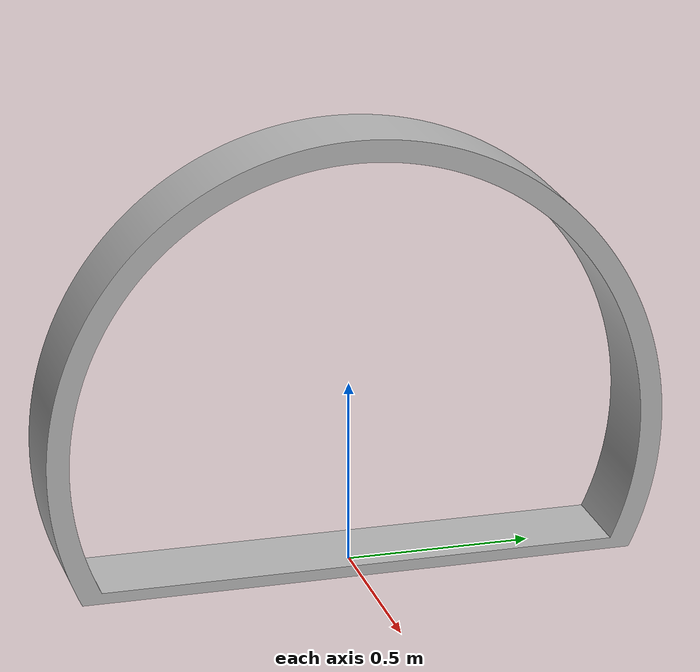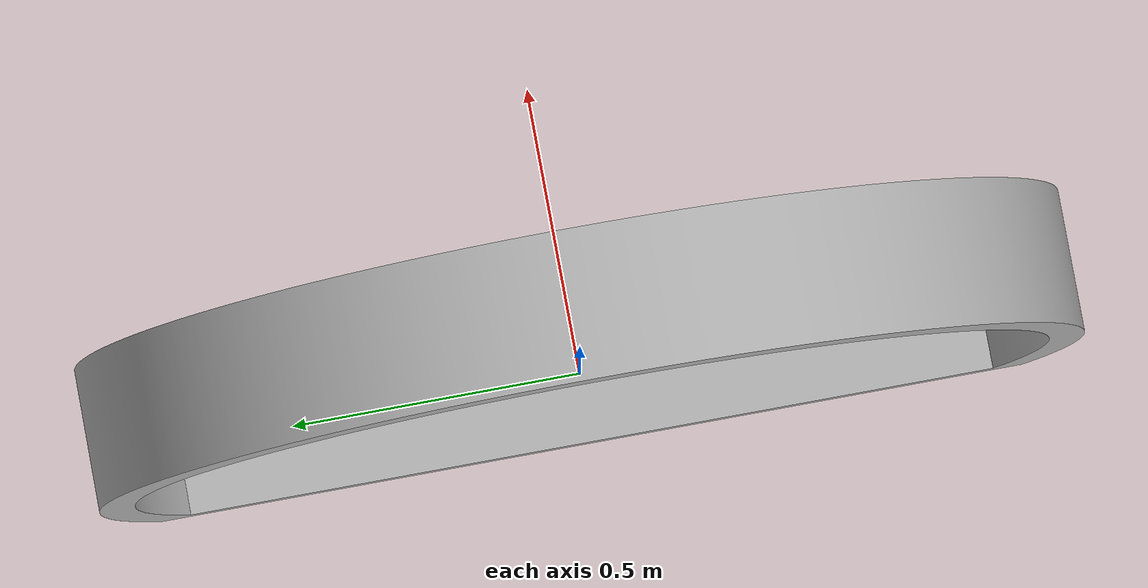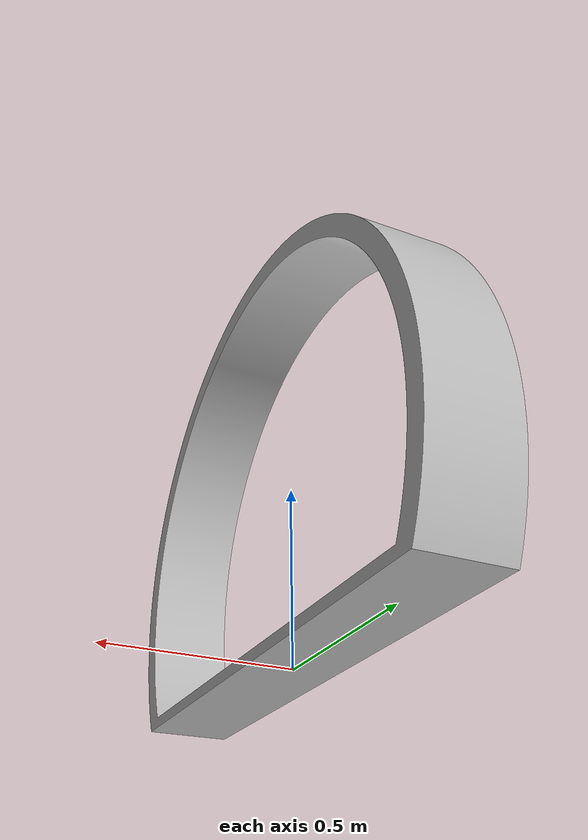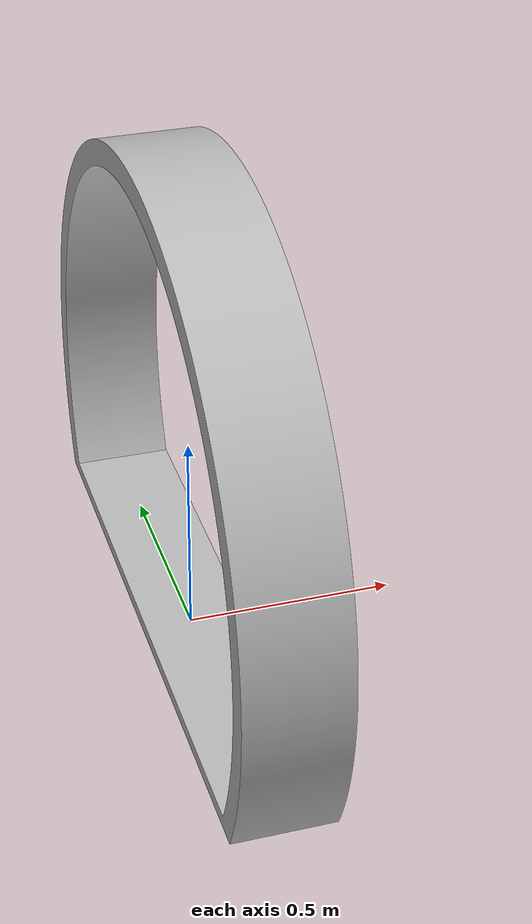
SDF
<?xml version="1.0" ?>
<sdf version="1.6">
  <model name="circle_gate_race">
  <static>1</static>
    <link name="link">
      <inertial>
        <mass>10.0</mass>
        <inertia>
          <ixx>10.0</ixx>
          <ixy>0.0</ixy>
          <ixz>0.0</ixz>
          <iyy>10.0</iyy>
          <iyz>0.0</iyz>
          <izz>10.0</izz>
        </inertia>
      </inertial>
      <collision name="collision">
        <pose>0 0 0 0 0 0</pose>
        <geometry>
          <mesh>
            <uri>model://circle_gate_race/meshes/gate.dae</uri>
            <scale>0.6 0.6 0.6</scale>
          </mesh>
        </geometry>
      </collision>
      <visual name="visual">
        <pose>0 0 0 0 0 0</pose>
        <geometry>
          <mesh>
            <uri>model://circle_gate_race/meshes/gate.dae</uri>
            <scale>0.6 0.6 0.6</scale>
          </mesh>
        </geometry>
        <material>
          <script>
            <uri>model://texture/texture.material</uri>
            <name>gate_texture</name>
          </script>
       </material>
      </visual>
    </link>
  </model>
</sdf>
